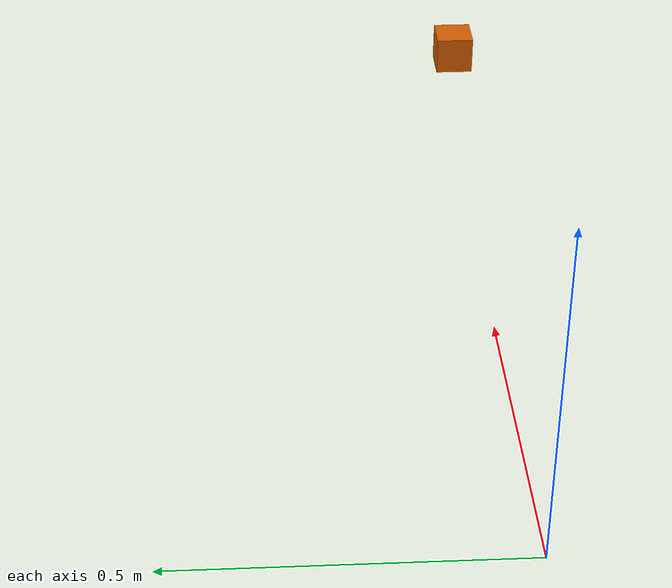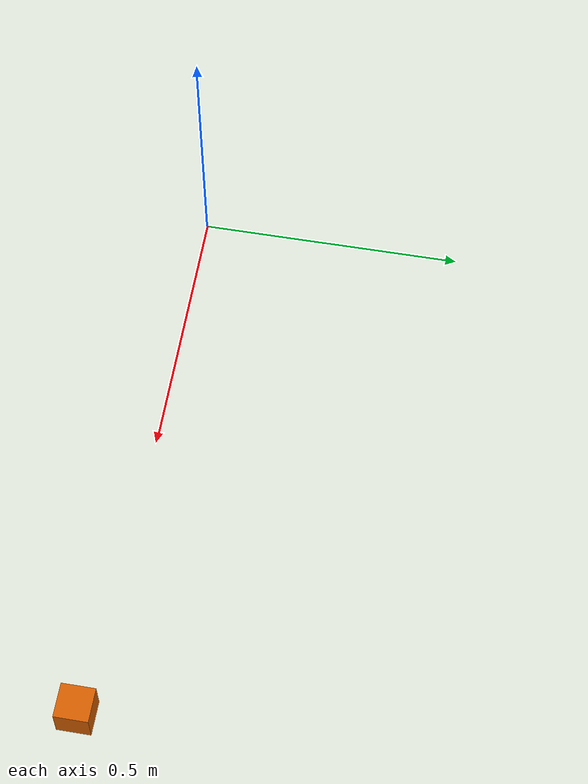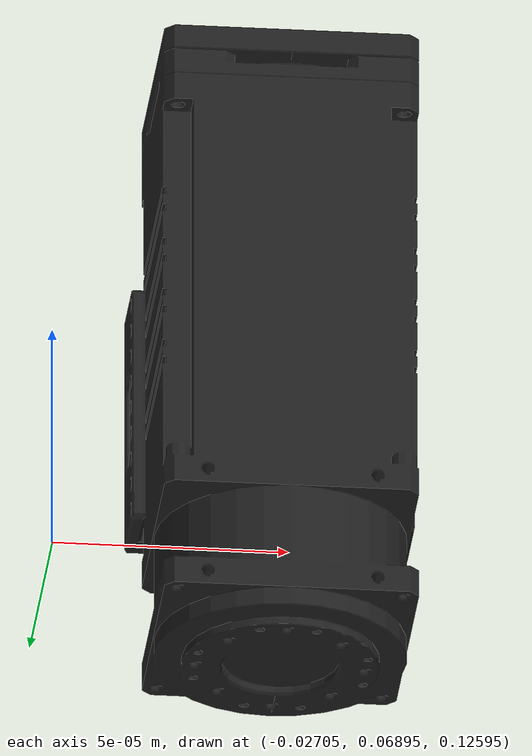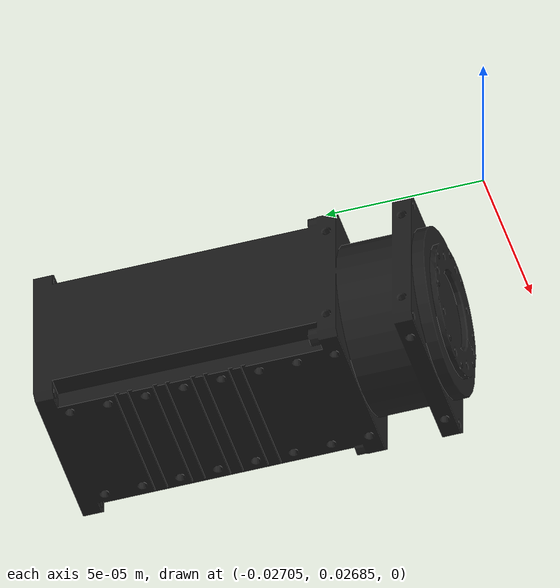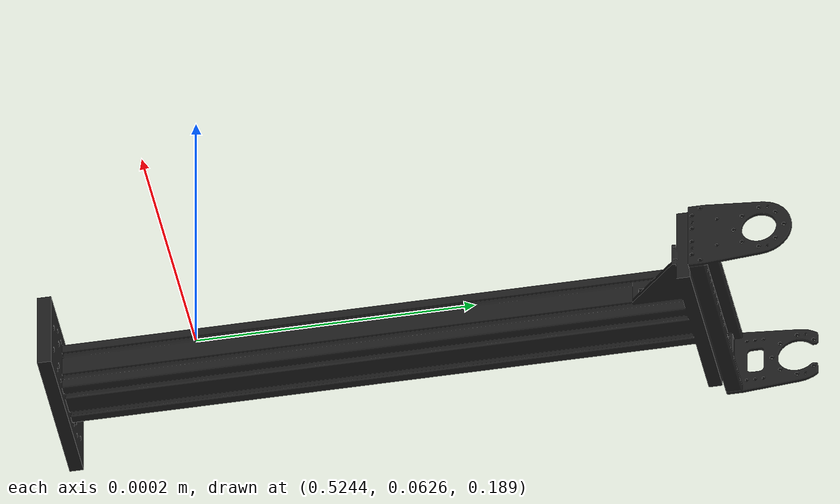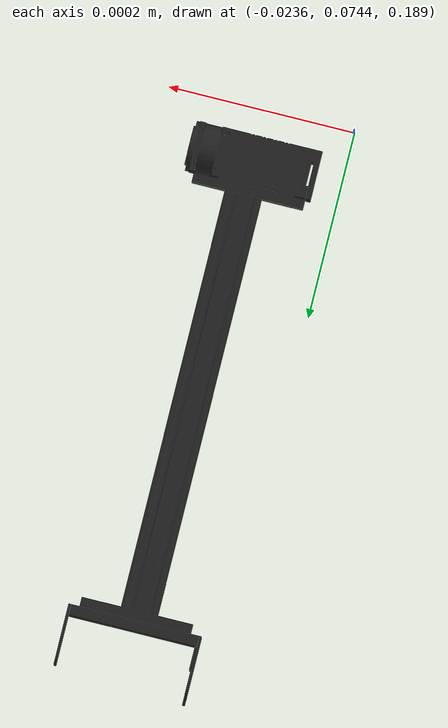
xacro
<?xml version="1.0" ?>

<robot name="robotarm" xmlns:xacro="http://www.ros.org/wiki/xacro">

  <xacro:include filename="$(find robotarm)/urdf/links_joints.xacro" />

  <!-- Dynamixel PH54-200-S500-R spec:
        continuous torque = 44.7 [Nm]
        continuous speed = 29 [rad/s] -->

    <link name = "world"/>

    <joint name="virtual_joint" type="fixed">
      <parent link="world" />
      <child link="base_link" />
    </joint>

    <m_link_mesh name="base_link"
                 origin_xyz="-0.027 0.027 0" origin_rpy="1.57 0 0"
                 meshfile="package://robotarm/meshes/link_1.STL"
                 meshscale="0.001 0.001 0.001"
                 mass="0.855"
                 ixx="1273676.57e-9"
                 ixy="0"
                 ixz="0"
                 iyy="1272091.46e-9"
                 iyz="173.33e-9"
                 izz="375253.31e-9"/>

    <m_joint name="base_link__link_01"
             motorname="motor1"
             type="revolute"
             axis_xyz="0 0 1"
             origin_rpy="0 0 0" origin_xyz="0 0 0.159"
             parent="base_link" child="link_01"
             limit_e="44.7" limit_l="-3.14" limit_u="3.14" limit_v="3"
             damp = "0" />

    <m_link_mesh name="link_01"
             origin_xyz="-0.027 0.069 -0.033" origin_rpy="1.57 0 0"
             meshfile="package://robotarm/meshes/link_2.STL"
             meshscale="0.001 0.001 0.001"
             mass="0.934"
             ixx="1537602.80e-9"
             ixy="-0.03e-9"
             ixz="0"
             iyy="1525990.95e-9"
             iyz="-36.60e-9"
             izz="445727.51e-9"/>

    <m_joint name="link_01__link_02" type="revolute"
           motorname="motor2"
           axis_xyz="0 0 1"
           origin_rpy="1.57 0 0" origin_xyz="0 0 0"
           parent="link_01" child="link_02"
           limit_e="44.7" limit_l="-3.14" limit_u="3.14" limit_v="3"
           damp = "0" />

    <m_link_mesh name="link_02"
             origin_xyz="-0.0235 0.03 -0.075" origin_rpy="0 0 -1.57"
             meshfile="package://robotarm/meshes/link_3.STL"
             meshscale="0.001 0.001 0.001"
             mass="2.0248"
             ixx="2319398.31e-9"
             ixy="-4029.80e-9"
             ixz="-411147.41e-9"
             iyy="85204850.14e-9"
             iyz="137.88e-9"
             izz="83804990.37e-9"/>

    <m_joint name="link_02__link_03" type="revolute"
           motorname="motor3"
           axis_xyz="0 0 1"
           origin_rpy="0 0 0" origin_xyz="0.548 0 0"
           parent="link_02" child="link_03"
           limit_e="44.7" limit_l="-3.14" limit_u="3.14" limit_v="3"
           damp = "0" />

    <m_link_mesh name="link_03"
                 origin_xyz="-0.0235 0.03 -0.063" origin_rpy="0 0 -1.57"
                 meshfile="package://robotarm/meshes/link_4.STL"
                 meshscale="0.001 0.001 0.001"
                 mass="1.239"
                 ixx="1226293.96e-9"
                 ixy="-1927.47e-9"
                 ixz="-119143.05e-9"
                 iyy="43530598.46e-9"
                 iyz="8.61e-9"
                 izz="42869469.56e-9"/>

    <joint name="link_03__end" type="fixed">
         <origin rpy="0 0 0" xyz="0.521 0 0"/>
         <parent link="link_03"/>
         <child link="end"/>
    </joint>

    <m_link_box name="end"
                origin_rpy="0 0 0" origin_xyz="0.03 0 0"
                mass="0"
                ixx="0" ixy="0" ixz="0"
                iyy="0" iyz="0"
                izz="0"
                size="0.06 0.06 0.06" />

    <gazebo>
     <plugin name="gazebo_ros_control" filename="libgazebo_ros_control.so">
     </plugin>
    </gazebo>

</robot>

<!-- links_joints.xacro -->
<robot xmlns:xacro="http://www.ros.org/wiki/xacro">

  <xacro:macro name="m_joint" params="name motorname type axis_xyz origin_rpy origin_xyz parent child limit_e limit_l limit_u limit_v damp">
    <joint name="${name}" type="${type}">
      <axis xyz="${axis_xyz}" />
      <limit effort="${limit_e}" lower="${limit_l}" upper="${limit_u}" velocity="${limit_v}" />
      <dynamics damping = "${damp}"/>
      <origin rpy="${origin_rpy}" xyz="${origin_xyz}" />
      <parent link="${parent}" />
      <child link="${child}" />
    </joint>
    <transmission name="trans_${name}">
      <type>transmission_interface/SimpleTransmission</type>
      <joint name="${name}">
        <hardwareInterface>hardware_interface/EffortJointInterface</hardwareInterface>
      </joint>
      <actuator name="motor_${motorname}">
        <hardwareInterface>hardware_interface/EffortJointInterface</hardwareInterface>
        <mechanicalReduction>1</mechanicalReduction>
      </actuator>
    </transmission>
  </xacro:macro>

  <xacro:macro name="m_link_cylinder" params="name origin_xyz origin_rpy radius length mass ixx ixy ixz iyy iyz izz">
    <link name="${name}">
      <inertial>
        <mass value="${mass}" />
        <origin rpy="${origin_rpy}" xyz="${origin_xyz}" />
        <inertia ixx="${ixx}" ixy="${ixy}" ixz="${ixz}" iyy="${iyy}" iyz="${iyz}" izz="${izz}" />
      </inertial>
      <collision>
        <origin rpy="${origin_rpy}" xyz="${origin_xyz}" />
        <geometry>
          <cylinder radius="${radius}" length="${length}" />
        </geometry>
      </collision>
      <visual>
        <origin rpy="${origin_rpy}" xyz="${origin_xyz}" />
        <geometry>
          <cylinder radius="${radius}" length="${length}" />
        </geometry>
      </visual>
    </link>
  </xacro:macro>

  <xacro:macro name="m_link_box" params="name origin_xyz origin_rpy size mass ixx ixy ixz iyy iyz izz">
    <link name="${name}">
      <inertial>
        <mass value="${mass}" />
        <origin rpy="${origin_rpy}" xyz="${origin_xyz}" />
        <inertia ixx="${ixx}" ixy="${ixy}" ixz="${ixz}" iyy="${iyy}" iyz="${iyz}" izz="${izz}" />
      </inertial>
      <collision>
        <origin rpy="${origin_rpy}" xyz="${origin_xyz}" />
        <geometry>
          <box size="${size}" />
        </geometry>
      </collision>
      <visual>
        <origin rpy="${origin_rpy}" xyz="${origin_xyz}" />
        <geometry>
          <box size="${size}" />
        </geometry>
      </visual>
    </link>
  </xacro:macro>

  <xacro:macro name="m_link_mesh" params="name origin_xyz origin_rpy meshfile meshscale mass ixx ixy ixz iyy iyz izz">
    <link name="${name}">
      <inertial>
        <mass value="${mass}" />
        <origin rpy="${origin_rpy}" xyz="${origin_xyz}" />
        <inertia ixx="${ixx}" ixy="${ixy}" ixz="${ixz}" iyy="${iyy}" iyz="${iyz}" izz="${izz}" />
      </inertial>
      <collision>
        <origin rpy="${origin_rpy}" xyz="${origin_xyz}" />
        <geometry>
          <mesh filename="${meshfile}" scale="${meshscale}"/>
        </geometry>
      </collision>
      <visual>
        <origin rpy="${origin_rpy}" xyz="${origin_xyz}" />
        <geometry>
          <mesh filename="${meshfile}" scale="${meshscale}"/>
        </geometry>
        <material name="light_black"/>
      </visual>
    </link>
  </xacro:macro>

</robot>
